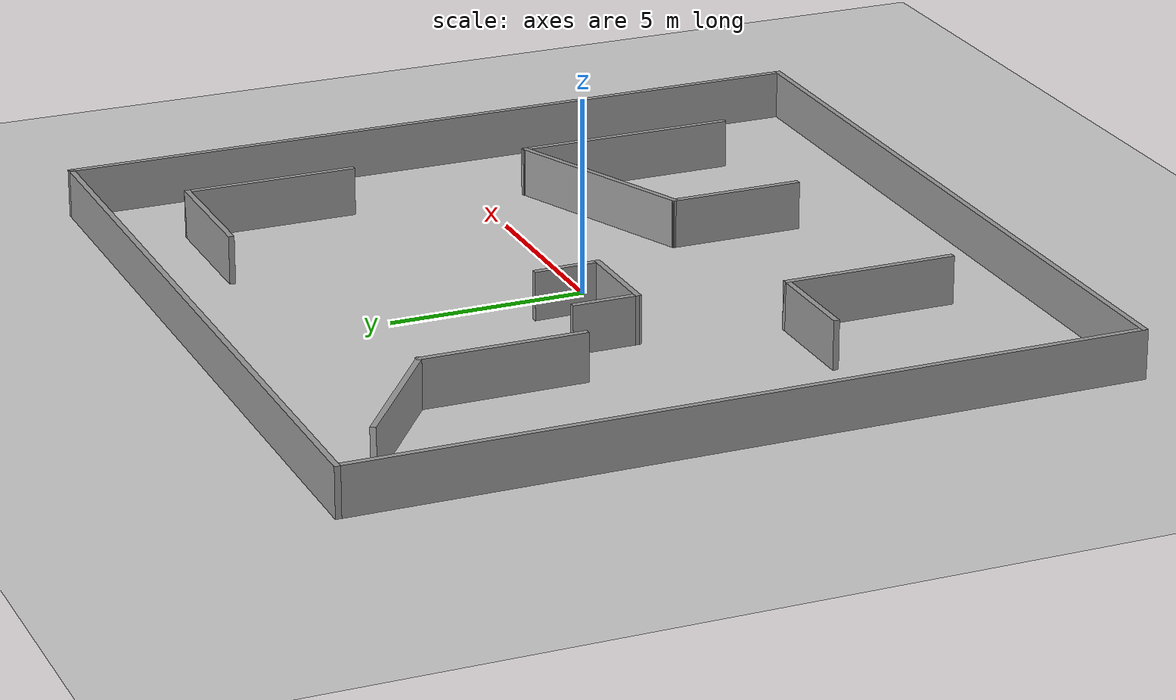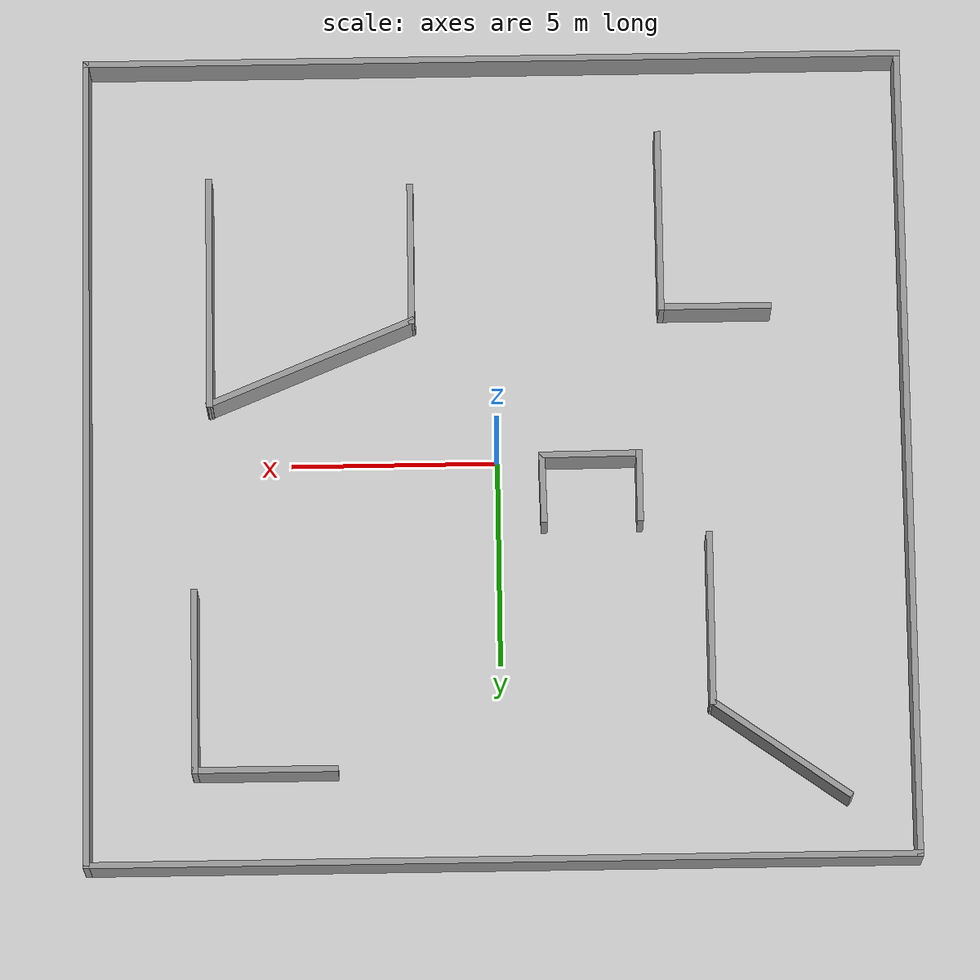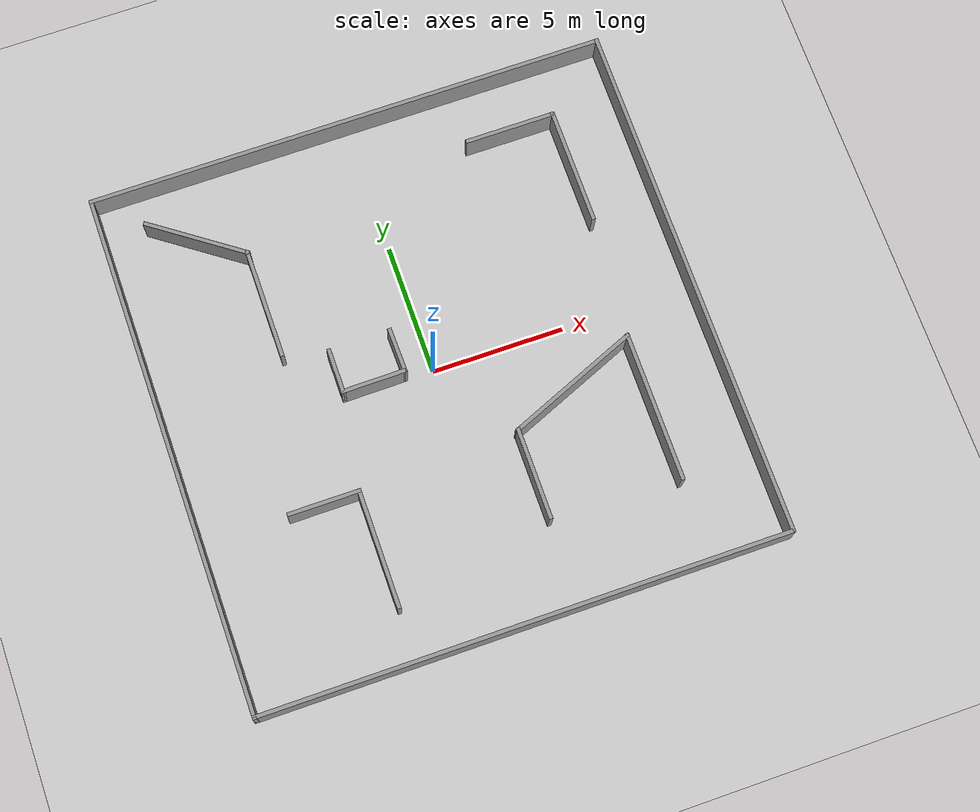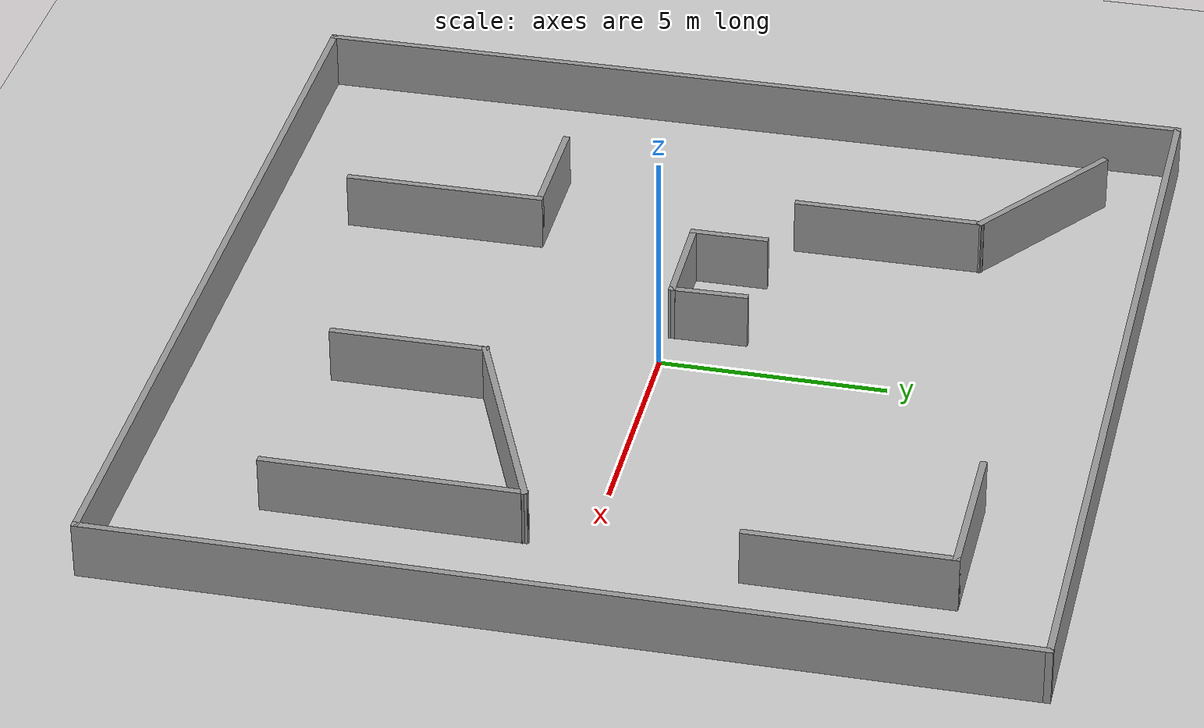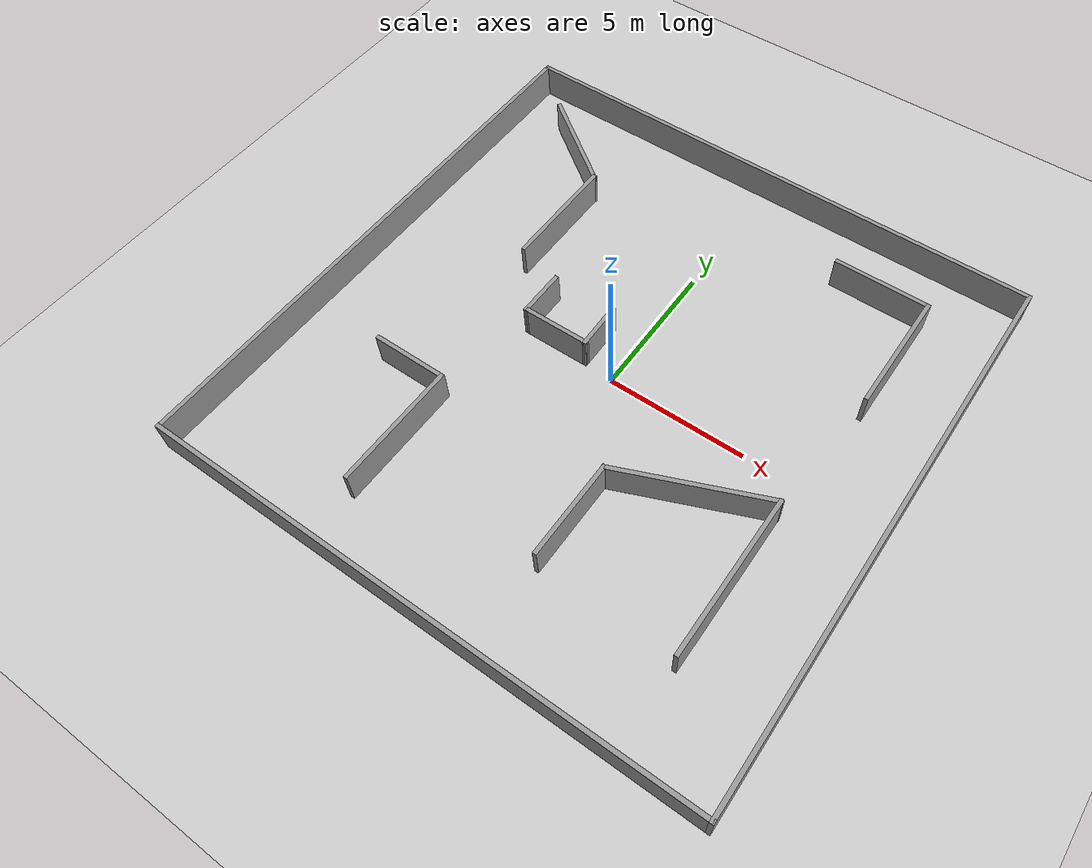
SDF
<sdf version="1.7">
 <world name="default">
  <light name="sun" type="directional">
   <pose>0 0 10 0 -0 0</pose>
   <diffuse>0.8 0.8 0.8 1</diffuse>
   <specular>0.2 0.2 0.2 1</specular>
   <attenuation>
    <range>1000</range>
    <constant>0.9</constant>
    <linear>0.01</linear>
    <quadratic>0.001</quadratic>
   </attenuation>
   <direction>-0.5 0.1 -0.9</direction>
   <spot><inner_angle>0</inner_angle><outer_angle>0</outer_angle><falloff>0</falloff></spot>
  </light>
  <model name="ground_plane">
   <static>1</static>
   <link name="link">
    <collision name="collision">
     <geometry><plane><normal>0 0 1</normal><size>100 100</size></plane></geometry>
     <surface><friction><ode><mu>100</mu><mu2>50</mu2></ode></friction></surface>
    </collision>
    <visual name="visual">
     <cast_shadows>0</cast_shadows>
     <geometry><plane><normal>0 0 1</normal><size>100 100</size></plane></geometry>
     <material>
      <script><uri>file://media/materials/scripts/gazebo.material</uri><name>Gazebo/Grey</name></script>
     </material>
    </visual>
   </link>
  </model>
  <gravity>0 0 -9.8</gravity>
  <magnetic_field>6e-06 2.3e-05 -4.2e-05</magnetic_field>
  <atmosphere type="adiabatic"/>
  <physics type="ode">
   <max_step_size>0.001</max_step_size>
   <real_time_factor>1</real_time_factor>
   <real_time_update_rate>1000</real_time_update_rate>
  </physics>
  <scene><ambient>0.4 0.4 0.4 1</ambient><background>0.7 0.7 0.7 1</background><shadows>1</shadows></scene>
  <spherical_coordinates>
   <surface_model>EARTH_WGS84</surface_model>
   <latitude_deg>0</latitude_deg>
   <longitude_deg>0</longitude_deg>
   <elevation>0</elevation>
   <heading_deg>0</heading_deg>
  </spherical_coordinates>
  <model name="map">
   <pose>0.009 0.008 0 0 -0 0</pose>
   <link name="Wall_11">
    <collision name="Wall_11_Collision">
     <geometry><box><size>20 0.15 1.25</size></box></geometry>
     <pose>0 0 0.625 0 -0 0</pose>
    </collision>
    <visual name="Wall_11_Visual">
     <pose>0 0 0.625 0 -0 0</pose>
     <geometry><box><size>20 0.15 1.25</size></box></geometry>
     <material>
      <script><uri>file://media/materials/scripts/gazebo.material</uri><name>Gazebo/Grey</name></script>
      <ambient>1 1 1 1</ambient>
     </material>
     <meta><layer>0</layer></meta>
    </visual>
    <pose>9.925 -0 0 0 -0 1.5708</pose>
   </link>
   <link name="Wall_12">
    <collision name="Wall_12_Collision">
     <geometry><box><size>20 0.15 1.25</size></box></geometry>
     <pose>0 0 0.625 0 -0 0</pose>
    </collision>
    <visual name="Wall_12_Visual">
     <pose>0 0 0.625 0 -0 0</pose>
     <geometry><box><size>20 0.15 1.25</size></box></geometry>
     <material>
      <script><uri>file://media/materials/scripts/gazebo.material</uri><name>Gazebo/Grey</name></script>
      <ambient>1 1 1 1</ambient>
     </material>
     <meta><layer>0</layer></meta>
    </visual>
    <pose>0 9.925 0 0 -0 3.14159</pose>
   </link>
   <link name="Wall_13">
    <collision name="Wall_13_Collision">
     <geometry><box><size>20 0.15 1.25</size></box></geometry>
     <pose>0 0 0.625 0 -0 0</pose>
    </collision>
    <visual name="Wall_13_Visual">
     <pose>0 0 0.625 0 -0 0</pose>
     <geometry><box><size>20 0.15 1.25</size></box></geometry>
     <material>
      <script><uri>file://media/materials/scripts/gazebo.material</uri><name>Gazebo/Grey</name></script>
      <ambient>1 1 1 1</ambient>
     </material>
     <meta><layer>0</layer></meta>
    </visual>
    <pose>-9.925 -0 0 0 -0 -1.5708</pose>
   </link>
   <link name="Wall_16">
    <collision name="Wall_16_Collision">
     <geometry><box><size>2.75 0.15 1.25</size></box></geometry>
     <pose>0 0 0.625 0 -0 0</pose>
    </collision>
    <visual name="Wall_16_Visual">
     <pose>0 0 0.625 0 -0 0</pose>
     <geometry><box><size>2.75 0.15 1.25</size></box></geometry>
     <material>
      <script><uri>file://media/materials/scripts/gazebo.material</uri><name>Gazebo/Grey</name></script>
      <ambient>1 1 1 1</ambient>
     </material>
     <meta><layer>0</layer></meta>
    </visual>
    <pose>-5.329 -3.59 0 0 -0 0</pose>
   </link>
   <link name="Wall_17">
    <collision name="Wall_17_Collision">
     <geometry><box><size>4.5 0.15 1.25</size></box></geometry>
     <pose>0 0 0.625 0 -0 0</pose>
    </collision>
    <visual name="Wall_17_Visual">
     <pose>0 0 0.625 0 -0 0</pose>
     <geometry><box><size>4.5 0.15 1.25</size></box></geometry>
     <material>
      <script><uri>file://media/materials/scripts/gazebo.material</uri><name>Gazebo/Grey</name></script>
      <ambient>1 1 1 1</ambient>
     </material>
     <meta><layer>0</layer></meta>
    </visual>
    <pose>-4.029 -5.765 0 0 -0 -1.5708</pose>
   </link>
   <link name="Wall_19">
    <collision name="Wall_19_Collision">
     <geometry><box><size>1.75 0.15 1.25</size></box></geometry>
     <pose>0 0 0.625 0 -0 0</pose>
    </collision>
    <visual name="Wall_19_Visual">
     <pose>0 0 0.625 0 -0 0</pose>
     <geometry><box><size>1.75 0.15 1.25</size></box></geometry>
     <material>
      <script><uri>file://media/materials/scripts/gazebo.material</uri><name>Gazebo/Grey</name></script>
      <ambient>1 1 1 1</ambient>
     </material>
     <meta><layer>0</layer></meta>
    </visual>
    <pose>-3.425 0.84 0 0 -0 -1.5708</pose>
   </link>
   <link name="Wall_20">
    <collision name="Wall_20_Collision">
     <geometry><box><size>2.49835 0.15 1.25</size></box></geometry>
     <pose>0 0 0.625 0 -0 0</pose>
    </collision>
    <visual name="Wall_20_Visual">
     <pose>0 0 0.625 0 -0 0</pose>
     <geometry><box><size>2.49835 0.15 1.25</size></box></geometry>
     <material>
      <script><uri>file://media/materials/scripts/gazebo.material</uri><name>Gazebo/Grey</name></script>
      <ambient>1 1 1 1</ambient>
     </material>
     <meta><layer>0</layer></meta>
    </visual>
    <pose>-2.251 0.048 0 0 -0 0.006814</pose>
   </link>
   <link name="Wall_21">
    <collision name="Wall_21_Collision">
     <geometry><box><size>1.75 0.15 1.25</size></box></geometry>
     <pose>0 0 0.625 0 -0 0</pose>
    </collision>
    <visual name="Wall_21_Visual">
     <pose>0 0 0.625 0 -0 0</pose>
     <geometry><box><size>1.75 0.15 1.25</size></box></geometry>
     <material>
      <script><uri>file://media/materials/scripts/gazebo.material</uri><name>Gazebo/Grey</name></script>
      <ambient>1 1 1 1</ambient>
     </material>
     <meta><layer>0</layer></meta>
    </visual>
    <pose>-1.092 0.856 0 0 -0 1.58954</pose>
   </link>
   <link name="Wall_23">
    <collision name="Wall_23_Collision">
     <geometry><box><size>3.5 0.15 1.25</size></box></geometry>
     <pose>0 0 0.625 0 -0 0</pose>
    </collision>
    <visual name="Wall_23_Visual">
     <pose>0 0 0.625 0 -0 0</pose>
     <geometry><box><size>3.5 0.15 1.25</size></box></geometry>
     <material>
      <script><uri>file://media/materials/scripts/gazebo.material</uri><name>Gazebo/Grey</name></script>
      <ambient>1 1 1 1</ambient>
     </material>
     <meta><layer>0</layer></meta>
    </visual>
    <pose>5.661 7.667 0 0 -0 0</pose>
   </link>
   <link name="Wall_24">
    <collision name="Wall_24_Collision">
     <geometry><box><size>4.5 0.15 1.25</size></box></geometry>
     <pose>0 0 0.625 0 -0 0</pose>
    </collision>
    <visual name="Wall_24_Visual">
     <pose>0 0 0.625 0 -0 0</pose>
     <geometry><box><size>4.5 0.15 1.25</size></box></geometry>
     <material>
      <script><uri>file://media/materials/scripts/gazebo.material</uri><name>Gazebo/Grey</name></script>
      <ambient>1 1 1 1</ambient>
     </material>
     <meta><layer>0</layer></meta>
    </visual>
    <pose>7.336 5.492 0 0 -0 -1.5708</pose>
   </link>
   <link name="Wall_26">
    <collision name="Wall_26_Collision">
     <geometry><box><size>3.5 0.15 1.25</size></box></geometry>
     <pose>0 0 0.625 0 -0 0</pose>
    </collision>
    <visual name="Wall_26_Visual">
     <pose>0 0 0.625 0 -0 0</pose>
     <geometry><box><size>3.5 0.15 1.25</size></box></geometry>
     <material>
      <script><uri>file://media/materials/scripts/gazebo.material</uri><name>Gazebo/Grey</name></script>
      <ambient>1 1 1 1</ambient>
     </material>
     <meta><layer>0</layer></meta>
    </visual>
    <pose>2.032 -5.015 0 0 -0 1.5708</pose>
   </link>
   <link name="Wall_27">
    <collision name="Wall_27_Collision">
     <geometry><box><size>5.45077 0.15 1.25</size></box></geometry>
     <pose>0 0 0.625 0 -0 0</pose>
    </collision>
    <visual name="Wall_27_Visual">
     <pose>0 0 0.625 0 -0 0</pose>
     <geometry><box><size>5.45077 0.15 1.25</size></box></geometry>
     <material>
      <script><uri>file://media/materials/scripts/gazebo.material</uri><name>Gazebo/Grey</name></script>
      <ambient>1 1 1 1</ambient>
     </material>
     <meta><layer>0</layer></meta>
    </visual>
    <pose>4.483 -2.3315 0 0 -0 0.39035</pose>
   </link>
   <link name="Wall_28">
    <collision name="Wall_28_Collision">
     <geometry><box><size>5.71495 0.15 1.25</size></box></geometry>
     <pose>0 0 0.625 0 -0 0</pose>
    </collision>
    <visual name="Wall_28_Visual">
     <pose>0 0 0.625 0 -0 0</pose>
     <geometry><box><size>5.71495 0.15 1.25</size></box></geometry>
     <material>
      <script><uri>file://media/materials/scripts/gazebo.material</uri><name>Gazebo/Grey</name></script>
      <ambient>1 1 1 1</ambient>
     </material>
     <meta><layer>0</layer></meta>
    </visual>
    <pose>6.934 -4.1055 0 0 -0 -1.5708</pose>
   </link>
   <link name="Wall_30">
    <collision name="Wall_30_Collision">
     <geometry><box><size>4.0785 0.15 1.25</size></box></geometry>
     <pose>0 0 0.625 0 -0 0</pose>
    </collision>
    <visual name="Wall_30_Visual">
     <pose>0 0 0.625 0 -0 0</pose>
     <geometry><box><size>4.0785 0.15 1.25</size></box></geometry>
     <material>
      <script><uri>file://media/materials/scripts/gazebo.material</uri><name>Gazebo/Grey</name></script>
      <ambient>1 1 1 1</ambient>
     </material>
     <meta><layer>0</layer></meta>
    </visual>
    <pose>-6.674 7.3155 0 0 -0 -0.618859</pose>
   </link>
   <link name="Wall_31">
    <collision name="Wall_31_Collision">
     <geometry><box><size>4.25 0.15 1.25</size></box></geometry>
     <pose>0 0 0.625 0 -0 0</pose>
    </collision>
    <visual name="Wall_31_Visual">
     <pose>0 0 0.625 0 -0 0</pose>
     <geometry><box><size>4.25 0.15 1.25</size></box></geometry>
     <material>
      <script><uri>file://media/materials/scripts/gazebo.material</uri><name>Gazebo/Grey</name></script>
      <ambient>1 1 1 1</ambient>
     </material>
     <meta><layer>0</layer></meta>
    </visual>
    <pose>-5.074 4.126 0 0 -0 -1.5708</pose>
   </link>
   <link name="Wall_9">
    <collision name="Wall_9_Collision">
     <geometry><box><size>20 0.15 1.25</size></box></geometry>
     <pose>0 0 0.625 0 -0 0</pose>
    </collision>
    <visual name="Wall_9_Visual">
     <pose>0 0 0.625 0 -0 0</pose>
     <geometry><box><size>20 0.15 1.25</size></box></geometry>
     <material>
      <script><uri>file://media/materials/scripts/gazebo.material</uri><name>Gazebo/Grey</name></script>
      <ambient>1 1 1 1</ambient>
     </material>
     <meta><layer>0</layer></meta>
    </visual>
    <pose>0 -9.925 0 0 -0 0</pose>
   </link>
   <static>1</static>
  </model>
 </world>
</sdf>
